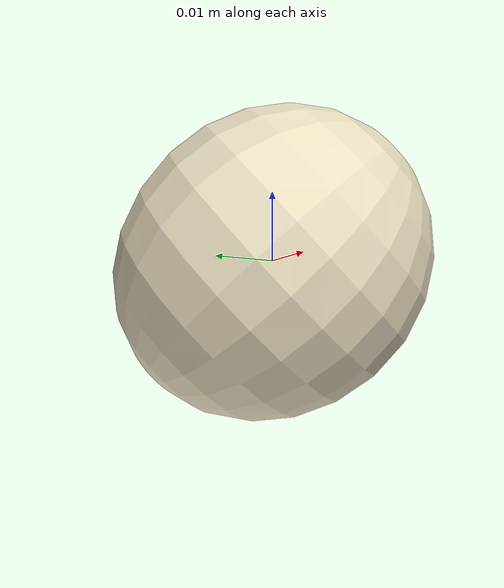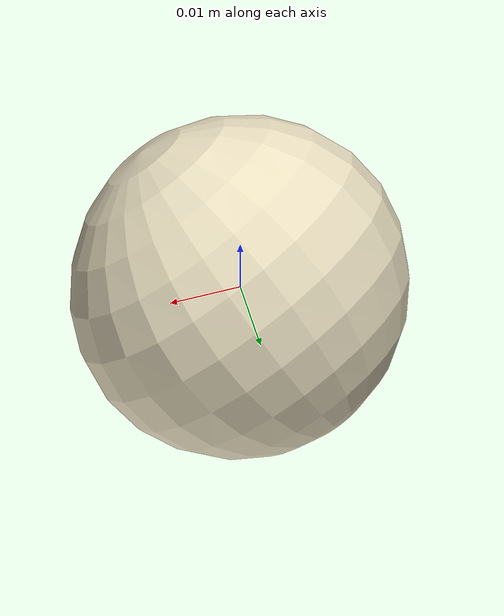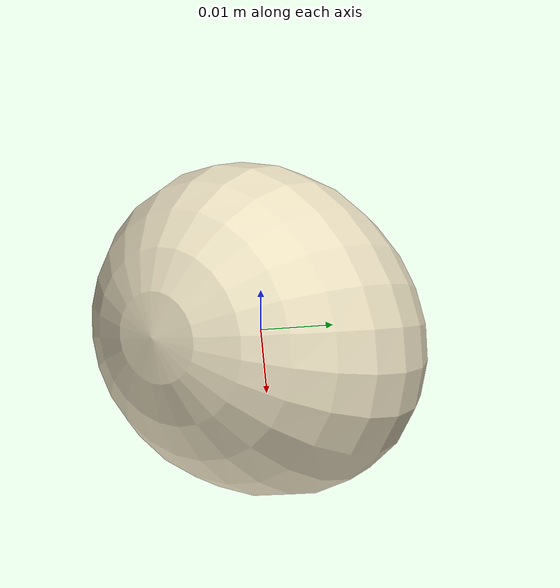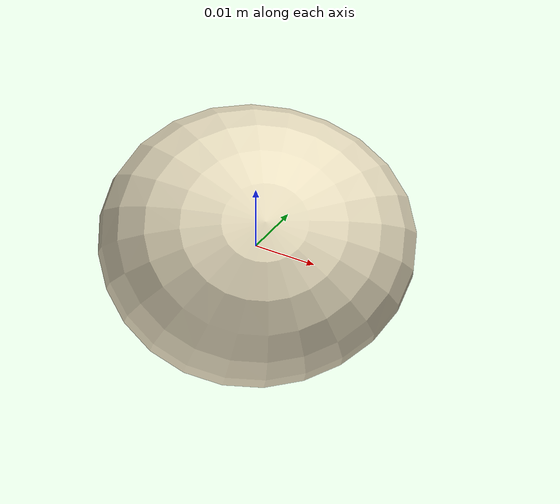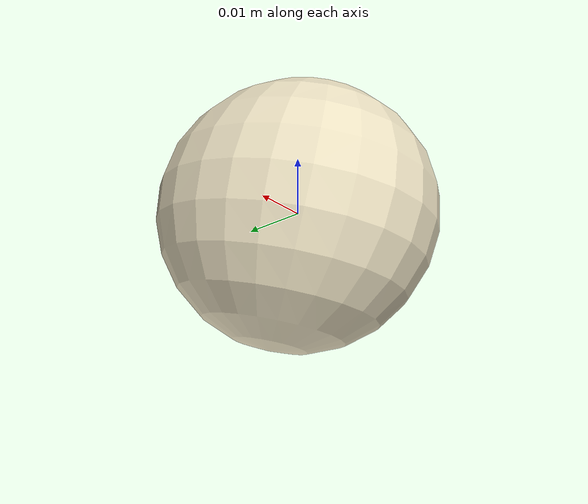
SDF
<?xml version="1.0"?>
<sdf version="1.7">
  <model name="cotton_pick_A_17">
    <static>false</static>
    <allow_auto_disable>false</allow_auto_disable>
    <link name="cotton_pick_A_17_link">
      <gravity>false</gravity>
      <self_collide>false</self_collide>
      <inertial>
        <mass>0.01200</mass>
        <inertia>
          <ixx>0.00000198</ixx>
          <iyy>0.00000198</iyy>
          <izz>0.00000198</izz>
          <ixy>0</ixy>
          <ixz>0</ixz>
          <iyz>0</iyz>
        </inertia>
      </inertial>
      <visual name="cotton_pick_A_17_visual">
        <geometry>
          <mesh>
            <uri>model://cotton_pick_A_17/meshes/cotton_pick_A_17.dae</uri>
          </mesh>
        </geometry>
      </visual>
      <collision name="cotton_pick_A_17_sphere_collision">
        <geometry>
          <sphere>
            <radius>0.02029</radius>
          </sphere>
        </geometry>
        <surface>
          <friction>
            <ode>
              <mu>1.6</mu>
              <mu2>1.6</mu2>
            </ode>
          </friction>
          <contact>
            <ode>
              <kp>8000</kp>
              <kd>80</kd>
            </ode>
          </contact>
        </surface>
      </collision>
    </link>
  </model>
</sdf>
